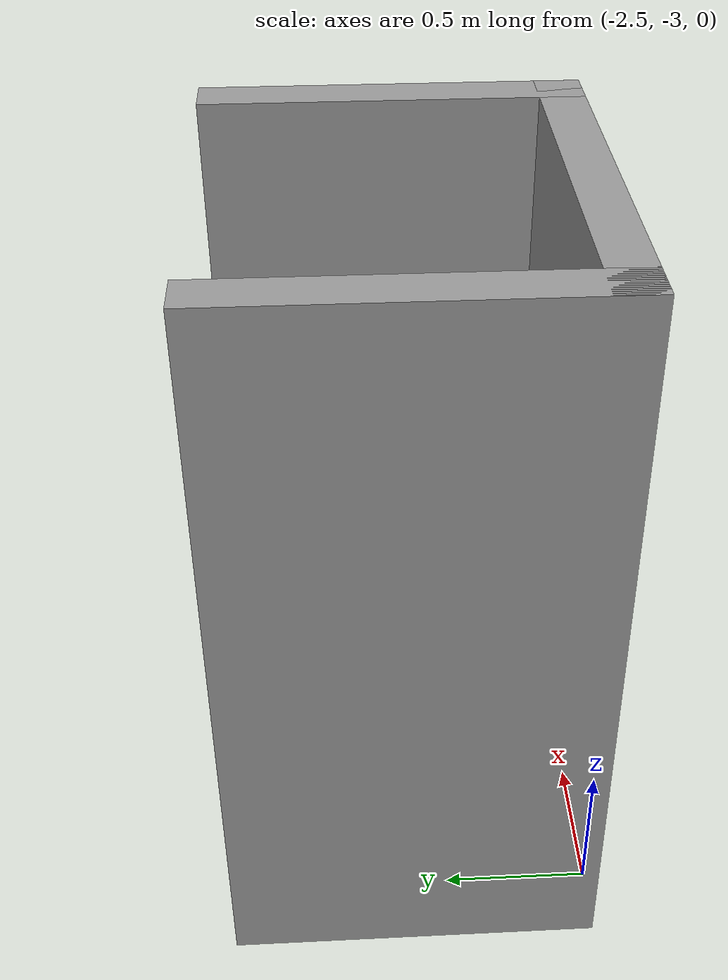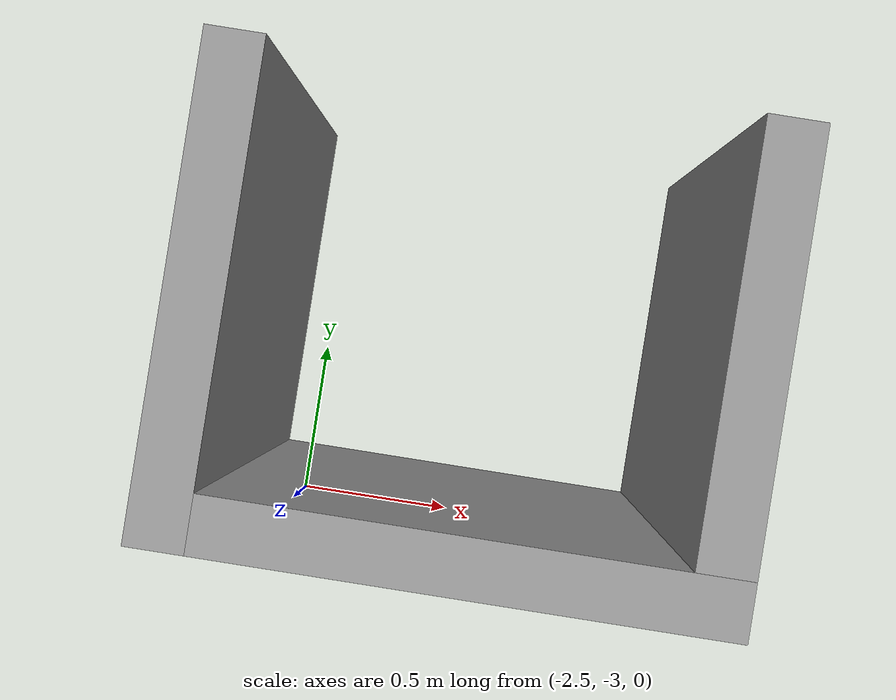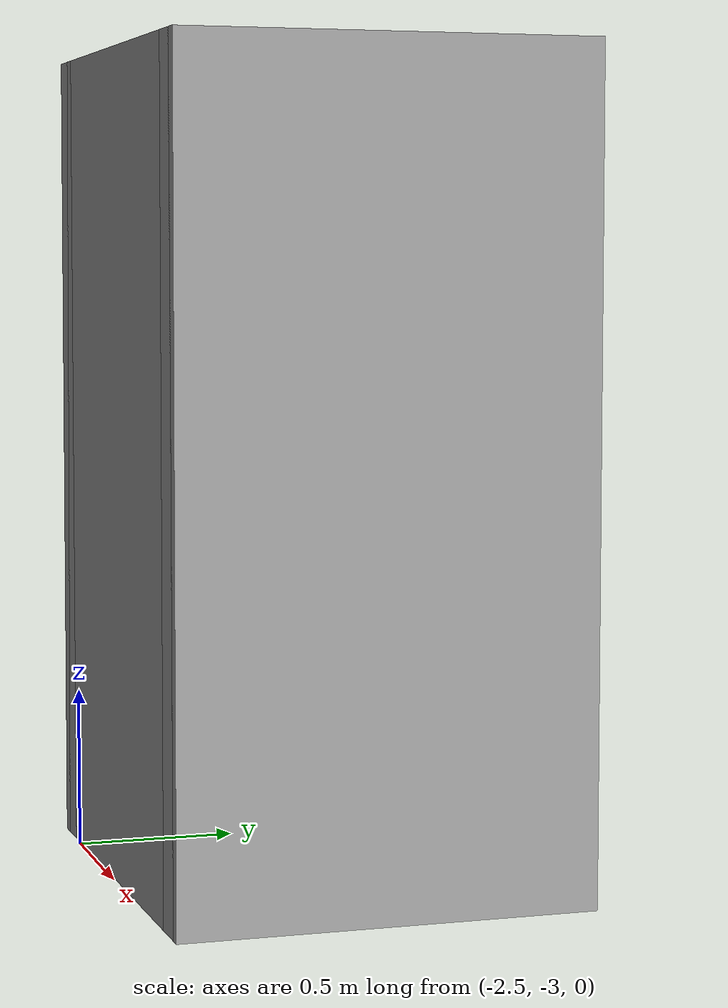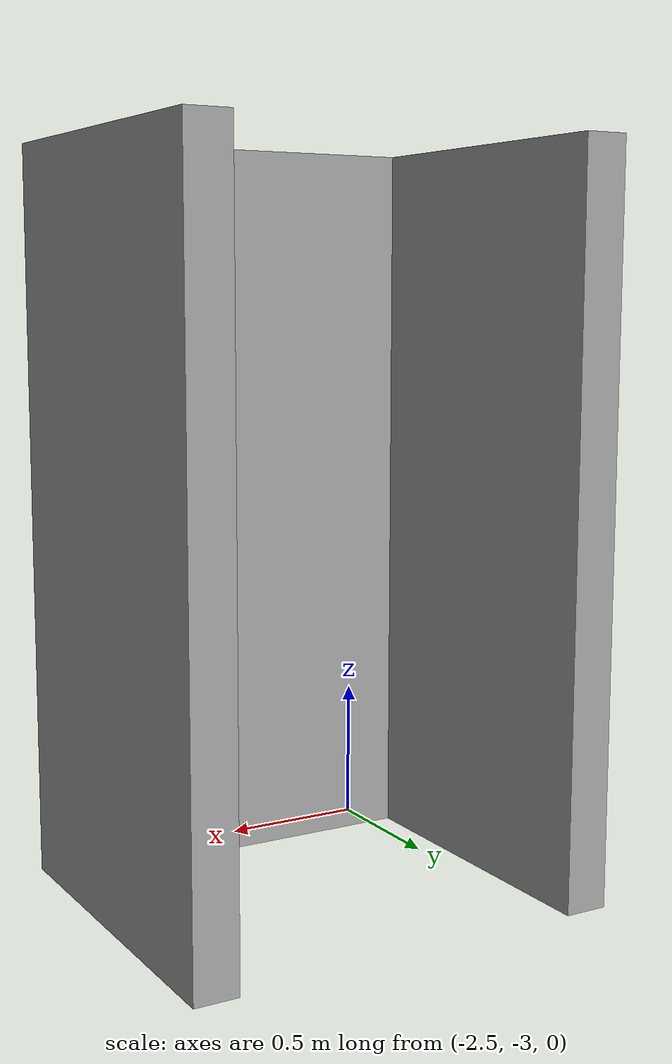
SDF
<?xml version='1.0'?>
<sdf version='1.6'>
  <model name='Ushape'>
    <pose frame=''>-1.3675 -1.4975 0 0 -0 0</pose>
    <link name='Wall_0'>
      <collision name='Wall_0_Collision'>
        <geometry>
          <box>
            <size>1.25 0.15 2.5</size>
          </box>
        </geometry>
        <pose frame=''>0 0 1.25 0 -0 0</pose>
      </collision>
      <visual name='Wall_0_Visual'>
        <pose frame=''>0 0 1.25 0 -0 0</pose>
        <geometry>
          <box>
            <size>1.25 0.15 2.5</size>
          </box>
        </geometry>
        <material>
          <script>
            <uri>file://media/materials/scripts/gazebo.material</uri>
            <name>Gazebo/Grey</name>
          </script>
          <ambient>1 1 1 1</ambient>
        </material>
        <meta>
          <layer>0</layer>
        </meta>
      </visual>
      <pose frame=''>-1.2925 -0.8725 0 0 -0 -1.5708</pose>
    </link>
    <link name='Wall_1'>
      <collision name='Wall_1_Collision'>
        <geometry>
          <box>
            <size>1.5 0.15 2.5</size>
          </box>
        </geometry>
        <pose frame=''>0 0 1.25 0 -0 0</pose>
      </collision>
      <visual name='Wall_1_Visual'>
        <pose frame=''>0 0 1.25 0 -0 0</pose>
        <geometry>
          <box>
            <size>1.5 0.15 2.5</size>
          </box>
        </geometry>
        <material>
          <script>
            <uri>file://media/materials/scripts/gazebo.material</uri>
            <name>Gazebo/Grey</name>
          </script>
          <ambient>1 1 1 1</ambient>
        </material>
        <meta>
          <layer>0</layer>
        </meta>
      </visual>
      <pose frame=''>-0.6175 -1.4225 0 0 -0 0</pose>
    </link>
    <link name='Wall_2'>
      <collision name='Wall_2_Collision'>
        <geometry>
          <box>
            <size>1.25 0.15 2.5</size>
          </box>
        </geometry>
        <pose frame=''>0 0 1.25 0 -0 0</pose>
      </collision>
      <visual name='Wall_2_Visual'>
        <pose frame=''>0 0 1.25 0 -0 0</pose>
        <geometry>
          <box>
            <size>1.25 0.15 2.5</size>
          </box>
        </geometry>
        <material>
          <script>
            <uri>file://media/materials/scripts/gazebo.material</uri>
            <name>Gazebo/Grey</name>
          </script>
          <ambient>1 1 1 1</ambient>
        </material>
        <meta>
          <layer>0</layer>
        </meta>
      </visual>
      <pose frame=''>0.0575 -0.8725 0 0 -0 1.5708</pose>
    </link>
    <static>1</static>
  </model>
</sdf>
